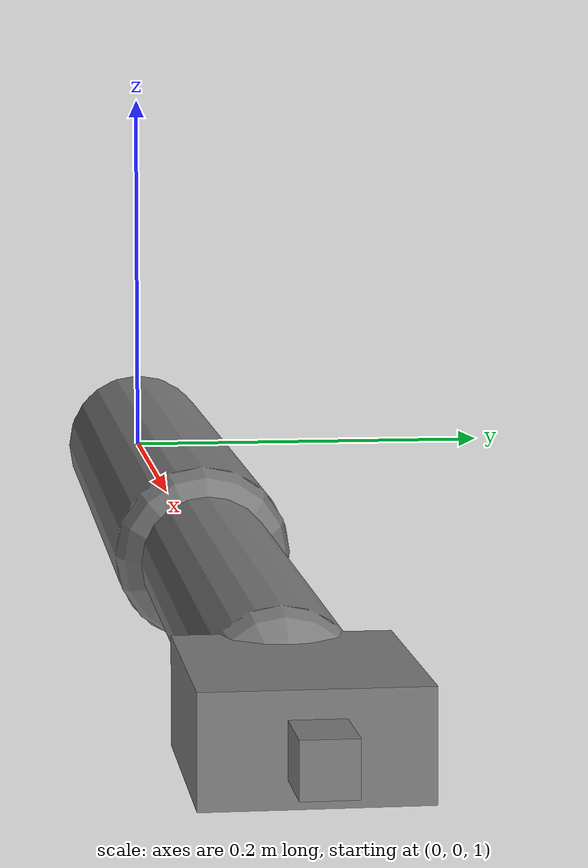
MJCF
<!-- Copyright 2026 -- CONTRIBUTORS. See LICENSE. -->
<mujoco model="arm">
  <option timestep="0.002" gravity="0 0 -9.81"/>
  <default>
    <position kp="40" ctrlrange="-2 2"/>
  </default>
  <worldbody>
    <body name="upper" pos="0 0 1">
      <joint name="shoulder" axis="0 1 0" damping="0.1"/>
      <geom type="capsule" fromto="0 0 0 0.4 0 0" size="0.04"/>
      <body name="fore" pos="0.4 0 0">
        <joint name="elbow" axis="0 1 0"/>
        <geom type="capsule" fromto="0 0 0 0.3 0 0" size="0.03"/>
        <body name="hand" pos="0.3 0 0">
          <joint name="wrist" axis="1 0 0"/>
          <geom type="box" size="0.05 0.04 0.02" pos="0.05 0 0"/>
          <body name="finger" pos="0.1 0 0">
            <joint name="slider" type="slide" axis="1 0 0"/>
            <geom type="box" size="0.03 0.01 0.01"/>
          </body>
        </body>
      </body>
    </body>
  </worldbody>
  <actuator>
    <position name="shoulder" joint="shoulder" kv="4"/>
    <position name="elbow" joint="elbow" kp="25" kv="2" gear="2"/>
    <velocity name="wrist" joint="wrist" kv="0.02" damping="0.05"/>
    <general name="slider" joint="slider" gainprm="3" biasprm="0.1 -2 -0.4"
             biastype="affine" forcerange="-0.8 0.8"/>
  </actuator>
</mujoco>
